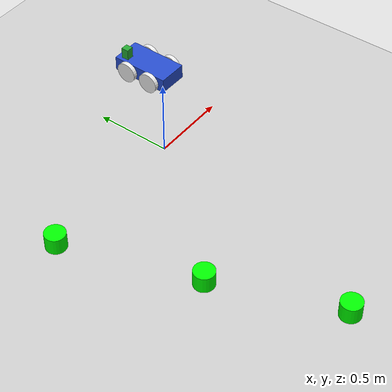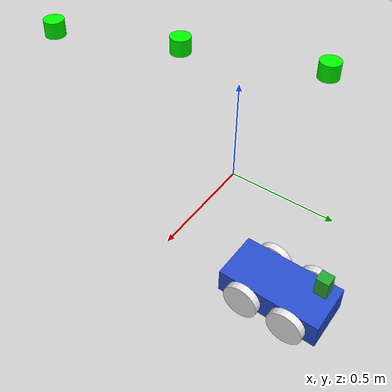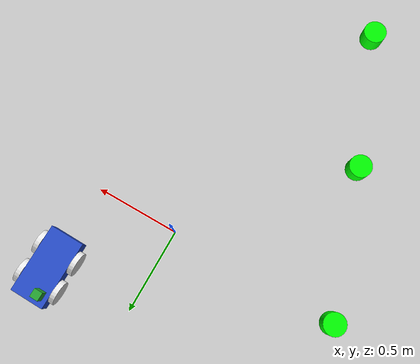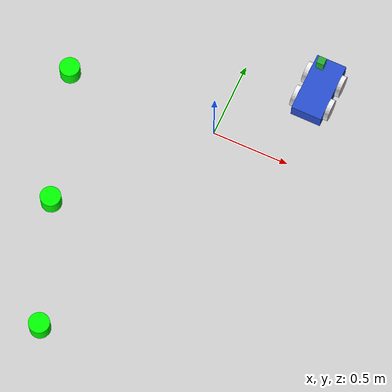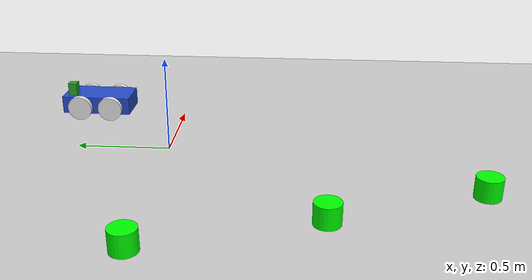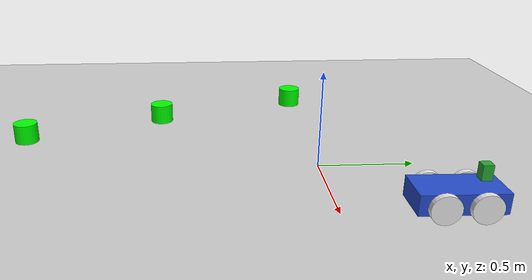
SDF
<sdf version="1.7">
 <world name="default">
  <model name="ground_plane">
   <static>1</static>
   <link name="link">
    <collision name="collision">
     <geometry><plane><normal>0 0 1</normal><size>100 100</size></plane></geometry>
     <surface>
      <contact><collide_bitmask>65535</collide_bitmask></contact>
      <friction><ode><mu>100</mu><mu2>50</mu2></ode></friction>
     </surface>
    </collision>
    <visual name="visual">
     <cast_shadows>0</cast_shadows>
     <geometry><plane><normal>0 0 1</normal><size>100 100</size></plane></geometry>
     <material>
      <script><uri>file://media/materials/scripts/gazebo.material</uri><name>Gazebo/Grey</name></script>
     </material>
    </visual>
   </link>
  </model>
  <model name="latinha_verde_clone">
   <link name="link">
    <inertial>
     <mass>1</mass>
     <inertia><ixx>0.145833</ixx><ixy>0</ixy><ixz>0</ixz><iyy>0.145833</iyy><iyz>0</iyz><izz>0.125</izz></inertia>
    </inertial>
    <visual name="visual">
     <geometry><cylinder><radius>0.066</radius><length>0.114</length></cylinder></geometry>
     <material>
      <script><name>Gazebo/Gray</name><uri>file://media/materials/scripts/gazebo.material</uri></script>
      <shader type="pixel"><normal_map>__default__</normal_map></shader>
      <ambient>0 1 0 1</ambient>
      <diffuse>0 1 0 1</diffuse>
      <specular>0.1 0.1 0.1 1</specular>
      <emissive>0 0 0 1</emissive>
     </material>
    </visual>
    <collision name="collision">
     <geometry><cylinder><radius>0.05</radius><length>0.1</length></cylinder></geometry>
     <surface>
      <friction>
       <ode><mu>1</mu><mu2>1</mu2><fdir1>0 0 0</fdir1><slip1>0</slip1><slip2>0</slip2></ode>
       <torsional>
        <coefficient>1</coefficient>
        <patch_radius>0</patch_radius>
        <surface_radius>0</surface_radius>
        <use_patch_radius>1</use_patch_radius>
        <ode><slip>0</slip></ode>
       </torsional>
      </friction>
      <bounce><restitution_coefficient>0</restitution_coefficient><threshold>1e+06</threshold></bounce>
      <contact>
       <collide_without_contact>0</collide_without_contact>
       <collide_without_contact_bitmask>1</collide_without_contact_bitmask>
       <collide_bitmask>1</collide_bitmask>
       <ode>
        <soft_cfm>0</soft_cfm>
        <soft_erp>0.2</soft_erp>
        <kp>1e+13</kp>
        <kd>1</kd>
        <max_vel>0.01</max_vel>
        <min_depth>0</min_depth>
       </ode>
       <bullet>
        <split_impulse>1</split_impulse>
        <split_impulse_penetration_threshold>-0.01</split_impulse_penetration_threshold>
        <soft_cfm>0</soft_cfm>
        <soft_erp>0.2</soft_erp>
        <kp>1e+13</kp>
        <kd>1</kd>
       </bullet>
      </contact>
     </surface>
    </collision>
   </link>
   <static>0</static>
   <pose>-1 0 0.049995 0 -0 8.4e-05</pose>
  </model>
  <model name="robot">
   <link name="base_link">
    <inertial>
     <pose>0.000909 -0.002545 0.081545 0 -0 0</pose>
     <mass>22</mass>
     <inertia>
      <ixx>1.31653</ixx>
      <ixy>0.00274909</ixy>
      <ixz>-0.00166909</ixz>
      <iyy>1.36382</iyy>
      <iyz>0.00467345</iyz>
      <izz>1.54868</izz>
     </inertia>
    </inertial>
    <collision name="base_link_collision">
     <pose>0 0 0.08 0 -0 0</pose>
     <geometry><box><size>0.2 0.4 0.1</size></box></geometry>
    </collision>
    <collision name="base_link_fixed_joint_lump__camera_link_collision_1">
     <pose>0.05 -0.14 0.165 0 0 -1.57119</pose>
     <geometry><box><size>0.05 0.05 0.08</size></box></geometry>
    </collision>
    <visual name="base_link_visual">
     <pose>0 0 0.08 0 -0 0</pose>
     <geometry><box><size>0.2 0.4 0.1</size></box></geometry>
     <material>
      <script><name>Gazebo/Blue</name><uri>file://media/materials/scripts/gazebo.material</uri></script>
     </material>
    </visual>
    <visual name="base_link_fixed_joint_lump__camera_link_visual_1">
     <pose>0.05 -0.14 0.165 0 0 -1.57119</pose>
     <geometry><box><size>0.05 0.05 0.08</size></box></geometry>
     <material>
      <script><name>Gazebo/Green</name><uri>file://media/materials/scripts/gazebo.material</uri></script>
     </material>
    </visual>
    <sensor name="camera" type="depth">
     <always_on>1</always_on>
     <visualize>1</visualize>
     <camera>
      <horizontal_fov>1.047</horizontal_fov>
      <image><width>640</width><height>480</height><format>R8G8B8</format></image>
      <depth_camera><output>depths</output></depth_camera>
      <clip><near>0.1</near><far>100</far></clip>
     </camera>
     <plugin name="camera_controller" filename="libgazebo_ros_openni_kinect.so">
      <baseline>0.2</baseline>
      <alwaysOn>1</alwaysOn>
      <updateRate>10.0</updateRate>
      <cameraName>camera</cameraName>
      <frameName>camera_link</frameName>
      <imageTopicName>rgb/image_raw</imageTopicName>
      <depthImageTopicName>depth/image_raw</depthImageTopicName>
      <pointCloudTopicName>depth/points</pointCloudTopicName>
      <cameraInfoTopicName>rgb/camera_info</cameraInfoTopicName>
      <depthImageCameraInfoTopicName>depth/camera_info</depthImageCameraInfoTopicName>
      <pointCloudCutoff>0.4</pointCloudCutoff>
      <hackBaseline>0.07</hackBaseline>
      <distortionK1>0.0</distortionK1>
      <distortionK2>0.0</distortionK2>
      <distortionK3>0.0</distortionK3>
      <distortionT1>0.0</distortionT1>
      <distortionT2>0.0</distortionT2>
      <CxPrime>0.0</CxPrime>
      <Cx>0.0</Cx>
      <Cy>0.0</Cy>
      <focalLength>0.0</focalLength>
      <robotNamespace>/</robotNamespace>
     </plugin>
     <pose>0.05 -0.14 0.165 0 -0 -1.57119</pose>
    </sensor>
   </link>
   <joint name="joint_base_to_left_back_wheel" type="revolute">
    <pose relative_to="base_link">-0.115 -0.09 0.07 3.14159 1.57079 3.14159</pose>
    <parent>base_link</parent>
    <child>left_back_wheel</child>
    <axis>
     <xyz>0 0 1</xyz>
     <limit><lower>-1e+16</lower><upper>1e+16</upper></limit>
     <dynamics><spring_reference>0</spring_reference><spring_stiffness>0</spring_stiffness></dynamics>
    </axis>
   </joint>
   <link name="left_back_wheel">
    <pose relative_to="joint_base_to_left_back_wheel">0 0 0 0 -0 0</pose>
    <inertial>
     <mass>0.54</mass>
     <inertia>
      <ixx>0.000702</ixx>
      <ixy>0</ixy>
      <ixz>0</ixz>
      <iyy>0.000702</iyy>
      <iyz>0</iyz>
      <izz>0.001323</izz>
     </inertia>
    </inertial>
    <collision name="left_back_wheel_collision">
     <geometry><cylinder><length>0.03</length><radius>0.07</radius></cylinder></geometry>
    </collision>
    <visual name="left_back_wheel_visual">
     <geometry><cylinder><length>0.03</length><radius>0.07</radius></cylinder></geometry>
     <material>
      <script><name>Gazebo/White</name><uri>file://media/materials/scripts/gazebo.material</uri></script>
     </material>
    </visual>
   </link>
   <joint name="joint_base_to_left_front_wheel" type="revolute">
    <pose relative_to="base_link">-0.115 0.09 0.07 3.14159 1.57079 3.14159</pose>
    <parent>base_link</parent>
    <child>left_front_wheel</child>
    <axis>
     <xyz>0 0 1</xyz>
     <limit><lower>-1e+16</lower><upper>1e+16</upper></limit>
     <dynamics><spring_reference>0</spring_reference><spring_stiffness>0</spring_stiffness></dynamics>
    </axis>
   </joint>
   <link name="left_front_wheel">
    <pose relative_to="joint_base_to_left_front_wheel">0 0 0 0 -0 0</pose>
    <inertial>
     <mass>0.54</mass>
     <inertia>
      <ixx>0.000702</ixx>
      <ixy>0</ixy>
      <ixz>0</ixz>
      <iyy>0.000702</iyy>
      <iyz>0</iyz>
      <izz>0.001323</izz>
     </inertia>
    </inertial>
    <collision name="left_front_wheel_collision">
     <geometry><cylinder><length>0.03</length><radius>0.07</radius></cylinder></geometry>
    </collision>
    <visual name="left_front_wheel_visual">
     <geometry><cylinder><length>0.03</length><radius>0.07</radius></cylinder></geometry>
     <material>
      <script><name>Gazebo/White</name><uri>file://media/materials/scripts/gazebo.material</uri></script>
     </material>
    </visual>
   </link>
   <joint name="joint_base_to_right_back_wheel" type="revolute">
    <pose relative_to="base_link">0.115 -0.09 0.07 3.14159 1.57079 3.14159</pose>
    <parent>base_link</parent>
    <child>right_back_wheel</child>
    <axis>
     <xyz>0 0 1</xyz>
     <limit><lower>-1e+16</lower><upper>1e+16</upper></limit>
     <dynamics><spring_reference>0</spring_reference><spring_stiffness>0</spring_stiffness></dynamics>
    </axis>
   </joint>
   <link name="right_back_wheel">
    <pose relative_to="joint_base_to_right_back_wheel">0 0 0 0 -0 0</pose>
    <inertial>
     <mass>0.54</mass>
     <inertia>
      <ixx>0.000702</ixx>
      <ixy>0</ixy>
      <ixz>0</ixz>
      <iyy>0.000702</iyy>
      <iyz>0</iyz>
      <izz>0.001323</izz>
     </inertia>
    </inertial>
    <collision name="right_back_wheel_collision">
     <geometry><cylinder><length>0.03</length><radius>0.07</radius></cylinder></geometry>
    </collision>
    <visual name="right_back_wheel_visual">
     <geometry><cylinder><length>0.03</length><radius>0.07</radius></cylinder></geometry>
     <material>
      <script><name>Gazebo/White</name><uri>file://media/materials/scripts/gazebo.material</uri></script>
     </material>
    </visual>
   </link>
   <joint name="joint_base_to_right_front_wheel" type="revolute">
    <pose relative_to="base_link">0.115 0.09 0.07 3.14159 1.57079 3.14159</pose>
    <parent>base_link</parent>
    <child>right_front_wheel</child>
    <axis>
     <xyz>0 0 1</xyz>
     <limit><lower>-1e+16</lower><upper>1e+16</upper></limit>
     <dynamics><spring_reference>0</spring_reference><spring_stiffness>0</spring_stiffness></dynamics>
    </axis>
   </joint>
   <link name="right_front_wheel">
    <pose relative_to="joint_base_to_right_front_wheel">0 0 0 0 -0 0</pose>
    <inertial>
     <mass>0.54</mass>
     <inertia>
      <ixx>0.000702</ixx>
      <ixy>0</ixy>
      <ixz>0</ixz>
      <iyy>0.000702</iyy>
      <iyz>0</iyz>
      <izz>0.001323</izz>
     </inertia>
    </inertial>
    <collision name="right_front_wheel_collision">
     <geometry><cylinder><length>0.03</length><radius>0.07</radius></cylinder></geometry>
    </collision>
    <visual name="right_front_wheel_visual">
     <geometry><cylinder><length>0.03</length><radius>0.07</radius></cylinder></geometry>
     <material>
      <script><name>Gazebo/White</name><uri>file://media/materials/scripts/gazebo.material</uri></script>
     </material>
    </visual>
   </link>
   <static>0</static>
   <plugin name="skid_steer_drive_controller" filename="libgazebo_ros_skid_steer_drive.so">
    <updateRate>100.0</updateRate>
    <leftFrontJoint>joint_base_to_left_front_wheel</leftFrontJoint>
    <rightFrontJoint>joint_base_to_right_front_wheel</rightFrontJoint>
    <leftRearJoint>joint_base_to_left_back_wheel</leftRearJoint>
    <rightRearJoint>joint_base_to_right_back_wheel</rightRearJoint>
    <wheelSeparation>0.2</wheelSeparation>
    <wheelDiameter>0.14</wheelDiameter>
    <robotBaseFrame>base_link</robotBaseFrame>
    <torque>20</torque>
    <commandTopic>cmd_vel</commandTopic>
    <broadcastTF>1</broadcastTF>
    <robotNamespace>/</robotNamespace>
   </plugin>
   <pose>0.494429 0.51129 -0 3e-06 -7e-06 3.12561</pose>
  </model>
  <model name="latinha_verde_clone_5_clone_6_clone_5_clone_18">
   <link name="link">
    <inertial>
     <mass>1</mass>
     <inertia><ixx>0.145833</ixx><ixy>0</ixy><ixz>0</ixz><iyy>0.145833</iyy><iyz>0</iyz><izz>0.125</izz></inertia>
    </inertial>
    <visual name="visual">
     <geometry><cylinder><radius>0.066</radius><length>0.114</length></cylinder></geometry>
     <material>
      <script><name>Gazebo/Gray</name><uri>file://media/materials/scripts/gazebo.material</uri></script>
      <shader type="pixel"><normal_map>__default__</normal_map></shader>
      <ambient>0 1 0 1</ambient>
      <diffuse>0 1 0 1</diffuse>
      <specular>0.1 0.1 0.1 1</specular>
      <emissive>0 0 0 1</emissive>
     </material>
    </visual>
    <collision name="collision">
     <geometry><cylinder><radius>0.05</radius><length>0.1</length></cylinder></geometry>
     <surface>
      <friction>
       <ode><mu>1</mu><mu2>1</mu2><fdir1>0 0 0</fdir1><slip1>0</slip1><slip2>0</slip2></ode>
       <torsional>
        <coefficient>1</coefficient>
        <patch_radius>0</patch_radius>
        <surface_radius>0</surface_radius>
        <use_patch_radius>1</use_patch_radius>
        <ode><slip>0</slip></ode>
       </torsional>
      </friction>
      <bounce><restitution_coefficient>0</restitution_coefficient><threshold>1e+06</threshold></bounce>
      <contact>
       <collide_without_contact>0</collide_without_contact>
       <collide_without_contact_bitmask>1</collide_without_contact_bitmask>
       <collide_bitmask>1</collide_bitmask>
       <ode>
        <soft_cfm>0</soft_cfm>
        <soft_erp>0.2</soft_erp>
        <kp>1e+13</kp>
        <kd>1</kd>
        <max_vel>0.01</max_vel>
        <min_depth>0</min_depth>
       </ode>
       <bullet>
        <split_impulse>1</split_impulse>
        <split_impulse_penetration_threshold>-0.01</split_impulse_penetration_threshold>
        <soft_cfm>0</soft_cfm>
        <soft_erp>0.2</soft_erp>
        <kp>1e+13</kp>
        <kd>1</kd>
       </bullet>
      </contact>
     </surface>
    </collision>
   </link>
   <static>0</static>
   <pose>-0.429474 -1.59604 0.049995 0 -0 7.9e-05</pose>
  </model>
  <model name="latinha_verde_clone_5_clone_6_clone_5_clone_19">
   <link name="link">
    <inertial>
     <mass>1</mass>
     <inertia><ixx>0.145833</ixx><ixy>0</ixy><ixz>0</ixz><iyy>0.145833</iyy><iyz>0</iyz><izz>0.125</izz></inertia>
    </inertial>
    <visual name="visual">
     <geometry><cylinder><radius>0.066</radius><length>0.114</length></cylinder></geometry>
     <material>
      <script><name>Gazebo/Gray</name><uri>file://media/materials/scripts/gazebo.material</uri></script>
      <shader type="pixel"><normal_map>__default__</normal_map></shader>
      <ambient>0 1 0 1</ambient>
      <diffuse>0 1 0 1</diffuse>
      <specular>0.1 0.1 0.1 1</specular>
      <emissive>0 0 0 1</emissive>
     </material>
    </visual>
    <collision name="collision">
     <geometry><cylinder><radius>0.05</radius><length>0.1</length></cylinder></geometry>
     <surface>
      <friction>
       <ode><mu>1</mu><mu2>1</mu2><fdir1>0 0 0</fdir1><slip1>0</slip1><slip2>0</slip2></ode>
       <torsional>
        <coefficient>1</coefficient>
        <patch_radius>0</patch_radius>
        <surface_radius>0</surface_radius>
        <use_patch_radius>1</use_patch_radius>
        <ode><slip>0</slip></ode>
       </torsional>
      </friction>
      <bounce><restitution_coefficient>0</restitution_coefficient><threshold>1e+06</threshold></bounce>
      <contact>
       <collide_without_contact>0</collide_without_contact>
       <collide_without_contact_bitmask>1</collide_without_contact_bitmask>
       <collide_bitmask>1</collide_bitmask>
       <ode>
        <soft_cfm>0</soft_cfm>
        <soft_erp>0.2</soft_erp>
        <kp>1e+13</kp>
        <kd>1</kd>
        <max_vel>0.01</max_vel>
        <min_depth>0</min_depth>
       </ode>
       <bullet>
        <split_impulse>1</split_impulse>
        <split_impulse_penetration_threshold>-0.01</split_impulse_penetration_threshold>
        <soft_cfm>0</soft_cfm>
        <soft_erp>0.2</soft_erp>
        <kp>1e+13</kp>
        <kd>1</kd>
       </bullet>
      </contact>
     </surface>
    </collision>
   </link>
   <static>0</static>
   <pose>-0.724257 -0.839037 0.049991 0 -0 8.2e-05</pose>
  </model>
 </world>
</sdf>
